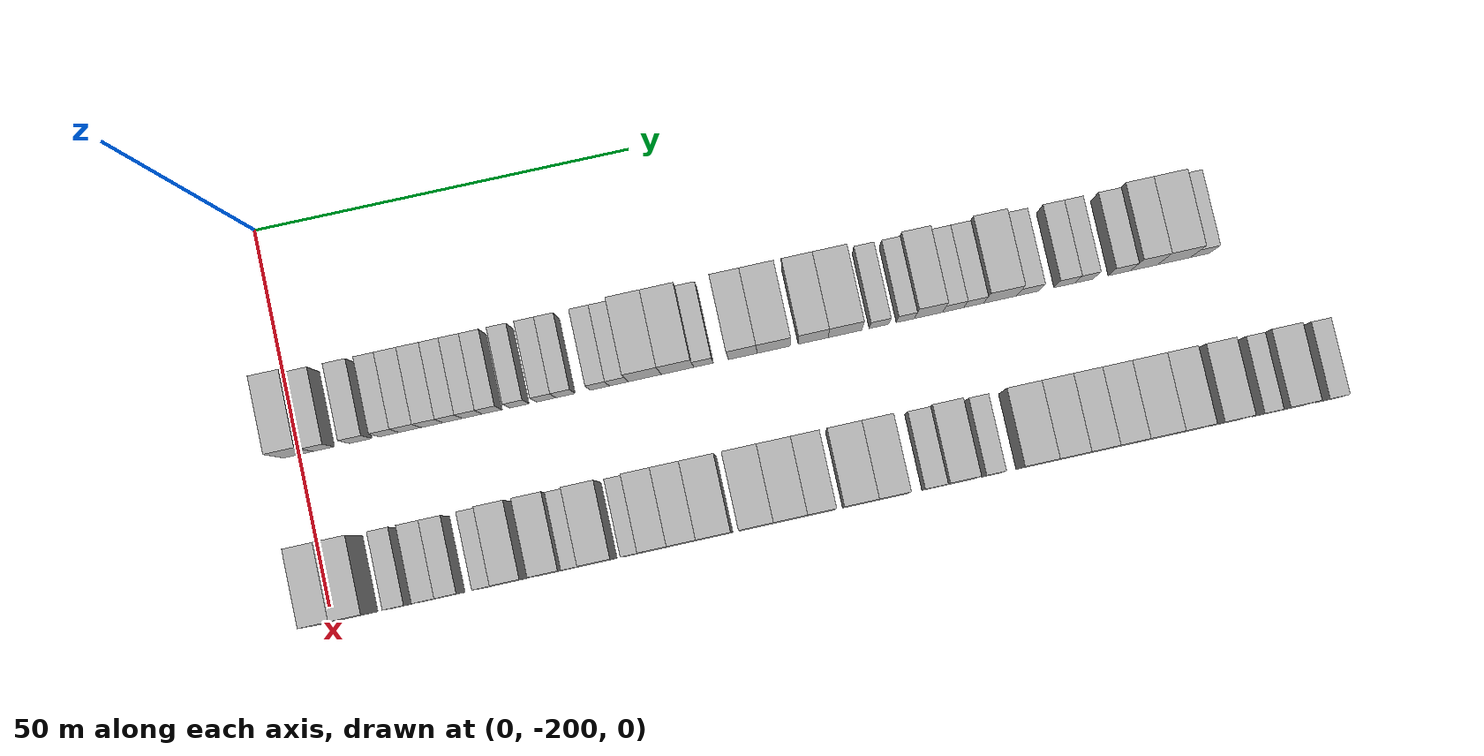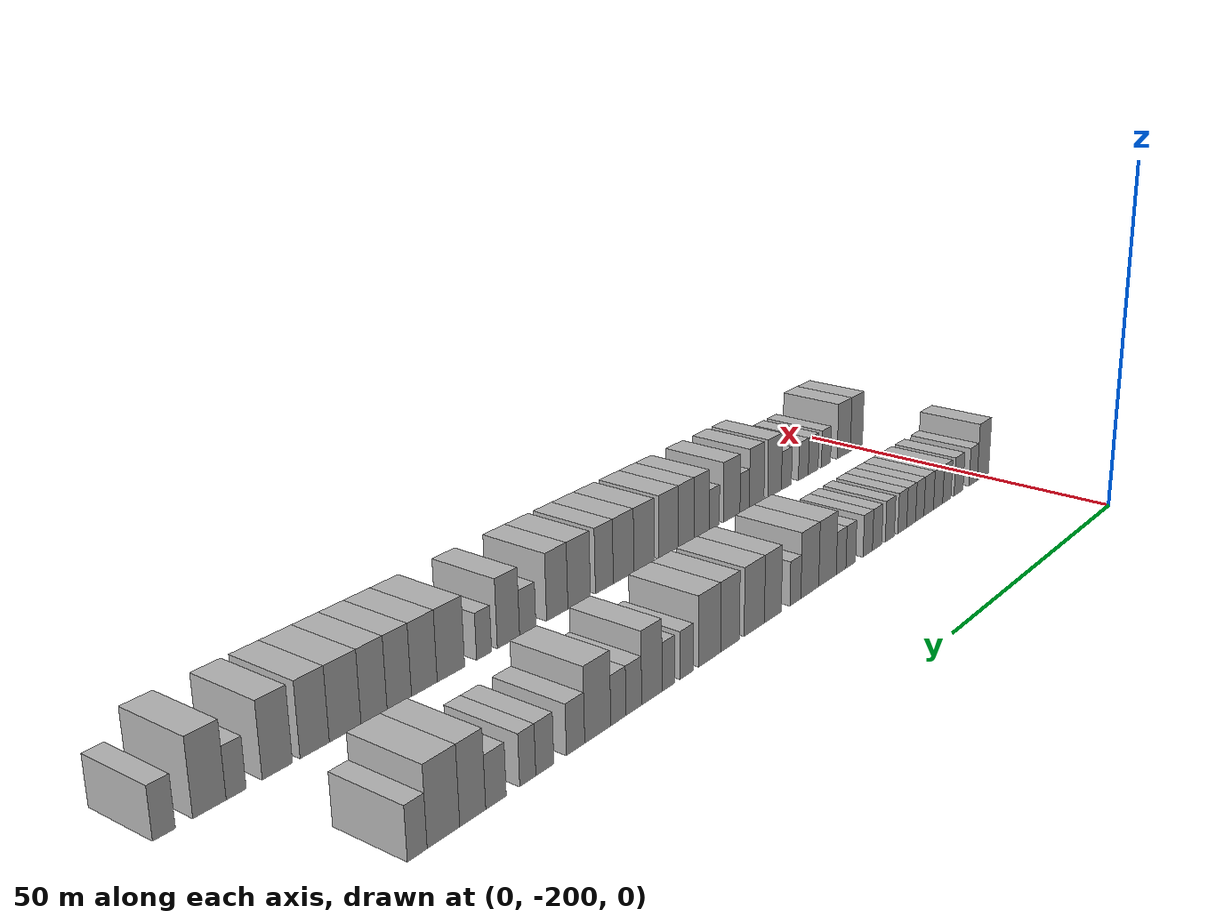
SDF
<sdf version="1.6">
 <world name="default">
  <model name="building_1">
   <static>1</static>
   <pose>25.0000 -200.0431 0 0.000000 0.000000 0.000000</pose>
   <link name="link">
    <pose>0 0 4.50 0 0 0</pose>
    <collision name="collision"><geometry><box><size>10.0000 3.9137 9.0000</size></box></geometry></collision>
    <visual name="visual">
     <cast_shadows>0</cast_shadows>
     <geometry><box><size>10.0000 3.9137 9.0000</size></box></geometry>
     <material>
      <script>
       <uri>model://HANNAS_wall/materials/scripts</uri>
       <uri>model://HANNAS_wall/materials/textures</uri>
       <name>vrc/HANNAS_wall</name>
      </script>
     </material>
    </visual>
   </link>
  </model>
  <model name="building_2">
   <static>1</static>
   <pose>25.0000 -196.7073 0 0.000000 0.000000 0.000000</pose>
   <link name="link">
    <pose>0 0 3.00 0 0 0</pose>
    <collision name="collision"><geometry><box><size>10.0000 2.7580 6.0000</size></box></geometry></collision>
    <visual name="visual">
     <cast_shadows>0</cast_shadows>
     <geometry><box><size>10.0000 2.7580 6.0000</size></box></geometry>
     <material>
      <script>
       <uri>model://HANNAS_wall/materials/scripts</uri>
       <uri>model://HANNAS_wall/materials/textures</uri>
       <name>vrc/HANNAS_wall</name>
      </script>
     </material>
    </visual>
   </link>
  </model>
  <model name="building_3">
   <static>1</static>
   <pose>25.0000 -191.8505 0 0.000000 0.000000 0.000000</pose>
   <link name="link">
    <pose>0 0 3.00 0 0 0</pose>
    <collision name="collision"><geometry><box><size>10.0000 2.9555 6.0000</size></box></geometry></collision>
    <visual name="visual">
     <cast_shadows>0</cast_shadows>
     <geometry><box><size>10.0000 2.9555 6.0000</size></box></geometry>
     <material>
      <script>
       <uri>model://HANNAS_wall/materials/scripts</uri>
       <uri>model://HANNAS_wall/materials/textures</uri>
       <name>vrc/HANNAS_wall</name>
      </script>
     </material>
    </visual>
   </link>
  </model>
  <model name="building_4">
   <static>1</static>
   <pose>25.0000 -188.0546 0 0.000000 0.000000 0.000000</pose>
   <link name="link">
    <pose>0 0 3.00 0 0 0</pose>
    <collision name="collision"><geometry><box><size>10.0000 2.6365 6.0000</size></box></geometry></collision>
    <visual name="visual">
     <cast_shadows>0</cast_shadows>
     <geometry><box><size>10.0000 2.6365 6.0000</size></box></geometry>
     <material>
      <script>
       <uri>model://HANNAS_wall/materials/scripts</uri>
       <uri>model://HANNAS_wall/materials/textures</uri>
       <name>vrc/HANNAS_wall</name>
      </script>
     </material>
    </visual>
   </link>
  </model>
  <model name="building_5">
   <static>1</static>
   <pose>25.0000 -185.2900 0 0.000000 0.000000 0.000000</pose>
   <link name="link">
    <pose>0 0 3.00 0 0 0</pose>
    <collision name="collision"><geometry><box><size>10.0000 2.8927 6.0000</size></box></geometry></collision>
    <visual name="visual">
     <cast_shadows>0</cast_shadows>
     <geometry><box><size>10.0000 2.8927 6.0000</size></box></geometry>
     <material>
      <script>
       <uri>model://HANNAS_wall/materials/scripts</uri>
       <uri>model://HANNAS_wall/materials/textures</uri>
       <name>vrc/HANNAS_wall</name>
      </script>
     </material>
    </visual>
   </link>
  </model>
  <model name="building_6">
   <static>1</static>
   <pose>25.0000 -182.3802 0 0.000000 0.000000 0.000000</pose>
   <link name="link">
    <pose>0 0 3.00 0 0 0</pose>
    <collision name="collision"><geometry><box><size>10.0000 2.9268 6.0000</size></box></geometry></collision>
    <visual name="visual">
     <cast_shadows>0</cast_shadows>
     <geometry><box><size>10.0000 2.9268 6.0000</size></box></geometry>
     <material>
      <script>
       <uri>model://HANNAS_wall/materials/scripts</uri>
       <uri>model://HANNAS_wall/materials/textures</uri>
       <name>vrc/HANNAS_wall</name>
      </script>
     </material>
    </visual>
   </link>
  </model>
  <model name="building_7">
   <static>1</static>
   <pose>25.0000 -179.6508 0 0.000000 0.000000 0.000000</pose>
   <link name="link">
    <pose>0 0 3.00 0 0 0</pose>
    <collision name="collision"><geometry><box><size>10.0000 2.5320 6.0000</size></box></geometry></collision>
    <visual name="visual">
     <cast_shadows>0</cast_shadows>
     <geometry><box><size>10.0000 2.5320 6.0000</size></box></geometry>
     <material>
      <script>
       <uri>model://HANNAS_wall/materials/scripts</uri>
       <uri>model://HANNAS_wall/materials/textures</uri>
       <name>vrc/HANNAS_wall</name>
      </script>
     </material>
    </visual>
   </link>
  </model>
  <model name="building_8">
   <static>1</static>
   <pose>25.0000 -177.0673 0 0.000000 0.000000 0.000000</pose>
   <link name="link">
    <pose>0 0 3.00 0 0 0</pose>
    <collision name="collision"><geometry><box><size>10.0000 2.6349 6.0000</size></box></geometry></collision>
    <visual name="visual">
     <cast_shadows>0</cast_shadows>
     <geometry><box><size>10.0000 2.6349 6.0000</size></box></geometry>
     <material>
      <script>
       <uri>model://HANNAS_wall/materials/scripts</uri>
       <uri>model://HANNAS_wall/materials/textures</uri>
       <name>vrc/HANNAS_wall</name>
      </script>
     </material>
    </visual>
   </link>
  </model>
  <model name="building_9">
   <static>1</static>
   <pose>25.0000 -174.4618 0 0.000000 0.000000 0.000000</pose>
   <link name="link">
    <pose>0 0 3.00 0 0 0</pose>
    <collision name="collision"><geometry><box><size>10.0000 2.5761 6.0000</size></box></geometry></collision>
    <visual name="visual">
     <cast_shadows>0</cast_shadows>
     <geometry><box><size>10.0000 2.5761 6.0000</size></box></geometry>
     <material>
      <script>
       <uri>model://HANNAS_wall/materials/scripts</uri>
       <uri>model://HANNAS_wall/materials/textures</uri>
       <name>vrc/HANNAS_wall</name>
      </script>
     </material>
    </visual>
   </link>
  </model>
  <model name="building_10">
   <static>1</static>
   <pose>25.0000 -170.8962 0 0.000000 0.000000 0.000000</pose>
   <link name="link">
    <pose>0 0 3.00 0 0 0</pose>
    <collision name="collision"><geometry><box><size>10.0000 2.5550 6.0000</size></box></geometry></collision>
    <visual name="visual">
     <cast_shadows>0</cast_shadows>
     <geometry><box><size>10.0000 2.5550 6.0000</size></box></geometry>
     <material>
      <script>
       <uri>model://HANNAS_wall/materials/scripts</uri>
       <uri>model://HANNAS_wall/materials/textures</uri>
       <name>vrc/HANNAS_wall</name>
      </script>
     </material>
    </visual>
   </link>
  </model>
  <model name="building_11">
   <static>1</static>
   <pose>25.0000 -167.3284 0 0.000000 0.000000 0.000000</pose>
   <link name="link">
    <pose>0 0 3.00 0 0 0</pose>
    <collision name="collision"><geometry><box><size>10.0000 2.5806 6.0000</size></box></geometry></collision>
    <visual name="visual">
     <cast_shadows>0</cast_shadows>
     <geometry><box><size>10.0000 2.5806 6.0000</size></box></geometry>
     <material>
      <script>
       <uri>model://HANNAS_wall/materials/scripts</uri>
       <uri>model://HANNAS_wall/materials/textures</uri>
       <name>vrc/HANNAS_wall</name>
      </script>
     </material>
    </visual>
   </link>
  </model>
  <model name="building_12">
   <static>1</static>
   <pose>25.0000 -164.7689 0 0.000000 0.000000 0.000000</pose>
   <link name="link">
    <pose>0 0 3.00 0 0 0</pose>
    <collision name="collision"><geometry><box><size>10.0000 2.5385 6.0000</size></box></geometry></collision>
    <visual name="visual">
     <cast_shadows>0</cast_shadows>
     <geometry><box><size>10.0000 2.5385 6.0000</size></box></geometry>
     <material>
      <script>
       <uri>model://HANNAS_wall/materials/scripts</uri>
       <uri>model://HANNAS_wall/materials/textures</uri>
       <name>vrc/HANNAS_wall</name>
      </script>
     </material>
    </visual>
   </link>
  </model>
  <model name="building_13">
   <static>1</static>
   <pose>25.0000 -160.2340 0 0.000000 0.000000 0.000000</pose>
   <link name="link">
    <pose>0 0 3.00 0 0 0</pose>
    <collision name="collision"><geometry><box><size>10.0000 2.5311 6.0000</size></box></geometry></collision>
    <visual name="visual">
     <cast_shadows>0</cast_shadows>
     <geometry><box><size>10.0000 2.5311 6.0000</size></box></geometry>
     <material>
      <script>
       <uri>model://HANNAS_wall/materials/scripts</uri>
       <uri>model://HANNAS_wall/materials/textures</uri>
       <name>vrc/HANNAS_wall</name>
      </script>
     </material>
    </visual>
   </link>
  </model>
  <model name="building_14">
   <static>1</static>
   <pose>25.0000 -157.7201 0 0.000000 0.000000 0.000000</pose>
   <link name="link">
    <pose>0 0 3.00 0 0 0</pose>
    <collision name="collision"><geometry><box><size>10.0000 2.4967 6.0000</size></box></geometry></collision>
    <visual name="visual">
     <cast_shadows>0</cast_shadows>
     <geometry><box><size>10.0000 2.4967 6.0000</size></box></geometry>
     <material>
      <script>
       <uri>model://HANNAS_wall/materials/scripts</uri>
       <uri>model://HANNAS_wall/materials/textures</uri>
       <name>vrc/HANNAS_wall</name>
      </script>
     </material>
    </visual>
   </link>
  </model>
  <model name="building_15">
   <static>1</static>
   <pose>25.0000 -154.2740 0 0.000000 0.000000 0.000000</pose>
   <link name="link">
    <pose>0 0 4.50 0 0 0</pose>
    <collision name="collision"><geometry><box><size>10.0000 4.3956 9.0000</size></box></geometry></collision>
    <visual name="visual">
     <cast_shadows>0</cast_shadows>
     <geometry><box><size>10.0000 4.3956 9.0000</size></box></geometry>
     <material>
      <script>
       <uri>model://HANNAS_wall/materials/scripts</uri>
       <uri>model://HANNAS_wall/materials/textures</uri>
       <name>vrc/HANNAS_wall</name>
      </script>
     </material>
    </visual>
   </link>
  </model>
  <model name="building_16">
   <static>1</static>
   <pose>25.0000 -149.9144 0 0.000000 0.000000 0.000000</pose>
   <link name="link">
    <pose>0 0 4.50 0 0 0</pose>
    <collision name="collision"><geometry><box><size>10.0000 4.3236 9.0000</size></box></geometry></collision>
    <visual name="visual">
     <cast_shadows>0</cast_shadows>
     <geometry><box><size>10.0000 4.3236 9.0000</size></box></geometry>
     <material>
      <script>
       <uri>model://HANNAS_wall/materials/scripts</uri>
       <uri>model://HANNAS_wall/materials/textures</uri>
       <name>vrc/HANNAS_wall</name>
      </script>
     </material>
    </visual>
   </link>
  </model>
  <model name="building_17">
   <static>1</static>
   <pose>25.0000 -146.4588 0 0.000000 0.000000 0.000000</pose>
   <link name="link">
    <pose>0 0 3.00 0 0 0</pose>
    <collision name="collision"><geometry><box><size>10.0000 2.5877 6.0000</size></box></geometry></collision>
    <visual name="visual">
     <cast_shadows>0</cast_shadows>
     <geometry><box><size>10.0000 2.5877 6.0000</size></box></geometry>
     <material>
      <script>
       <uri>model://HANNAS_wall/materials/scripts</uri>
       <uri>model://HANNAS_wall/materials/textures</uri>
       <name>vrc/HANNAS_wall</name>
      </script>
     </material>
    </visual>
   </link>
  </model>
  <model name="building_18">
   <static>1</static>
   <pose>25.0000 -141.2487 0 0.000000 0.000000 0.000000</pose>
   <link name="link">
    <pose>0 0 4.50 0 0 0</pose>
    <collision name="collision"><geometry><box><size>10.0000 3.8325 9.0000</size></box></geometry></collision>
    <visual name="visual">
     <cast_shadows>0</cast_shadows>
     <geometry><box><size>10.0000 3.8325 9.0000</size></box></geometry>
     <material>
      <script>
       <uri>model://HANNAS_wall/materials/scripts</uri>
       <uri>model://HANNAS_wall/materials/textures</uri>
       <name>vrc/HANNAS_wall</name>
      </script>
     </material>
    </visual>
   </link>
  </model>
  <model name="building_19">
   <static>1</static>
   <pose>25.0000 -137.1106 0 0.000000 0.000000 0.000000</pose>
   <link name="link">
    <pose>0 0 4.50 0 0 0</pose>
    <collision name="collision"><geometry><box><size>10.0000 4.4438 9.0000</size></box></geometry></collision>
    <visual name="visual">
     <cast_shadows>0</cast_shadows>
     <geometry><box><size>10.0000 4.4438 9.0000</size></box></geometry>
     <material>
      <script>
       <uri>model://HANNAS_wall/materials/scripts</uri>
       <uri>model://HANNAS_wall/materials/textures</uri>
       <name>vrc/HANNAS_wall</name>
      </script>
     </material>
    </visual>
   </link>
  </model>
  <model name="building_20">
   <static>1</static>
   <pose>25.0000 -131.8946 0 0.000000 0.000000 0.000000</pose>
   <link name="link">
    <pose>0 0 4.50 0 0 0</pose>
    <collision name="collision"><geometry><box><size>10.0000 3.9882 9.0000</size></box></geometry></collision>
    <visual name="visual">
     <cast_shadows>0</cast_shadows>
     <geometry><box><size>10.0000 3.9882 9.0000</size></box></geometry>
     <material>
      <script>
       <uri>model://HANNAS_wall/materials/scripts</uri>
       <uri>model://HANNAS_wall/materials/textures</uri>
       <name>vrc/HANNAS_wall</name>
      </script>
     </material>
    </visual>
   </link>
  </model>
  <model name="building_21">
   <static>1</static>
   <pose>25.0000 -127.6713 0 0.000000 0.000000 0.000000</pose>
   <link name="link">
    <pose>0 0 4.50 0 0 0</pose>
    <collision name="collision"><geometry><box><size>10.0000 4.4585 9.0000</size></box></geometry></collision>
    <visual name="visual">
     <cast_shadows>0</cast_shadows>
     <geometry><box><size>10.0000 4.4585 9.0000</size></box></geometry>
     <material>
      <script>
       <uri>model://HANNAS_wall/materials/scripts</uri>
       <uri>model://HANNAS_wall/materials/textures</uri>
       <name>vrc/HANNAS_wall</name>
      </script>
     </material>
    </visual>
   </link>
  </model>
  <model name="building_22">
   <static>1</static>
   <pose>25.0000 -123.1345 0 0.000000 0.000000 0.000000</pose>
   <link name="link">
    <pose>0 0 3.00 0 0 0</pose>
    <collision name="collision"><geometry><box><size>10.0000 2.6150 6.0000</size></box></geometry></collision>
    <visual name="visual">
     <cast_shadows>0</cast_shadows>
     <geometry><box><size>10.0000 2.6150 6.0000</size></box></geometry>
     <material>
      <script>
       <uri>model://HANNAS_wall/materials/scripts</uri>
       <uri>model://HANNAS_wall/materials/textures</uri>
       <name>vrc/HANNAS_wall</name>
      </script>
     </material>
    </visual>
   </link>
  </model>
  <model name="building_23">
   <static>1</static>
   <pose>25.0000 -119.6156 0 0.000000 0.000000 0.000000</pose>
   <link name="link">
    <pose>0 0 3.00 0 0 0</pose>
    <collision name="collision"><geometry><box><size>10.0000 2.4228 6.0000</size></box></geometry></collision>
    <visual name="visual">
     <cast_shadows>0</cast_shadows>
     <geometry><box><size>10.0000 2.4228 6.0000</size></box></geometry>
     <material>
      <script>
       <uri>model://HANNAS_wall/materials/scripts</uri>
       <uri>model://HANNAS_wall/materials/textures</uri>
       <name>vrc/HANNAS_wall</name>
      </script>
     </material>
    </visual>
   </link>
  </model>
  <model name="building_24">
   <static>1</static>
   <pose>25.0000 -116.5192 0 0.000000 0.000000 0.000000</pose>
   <link name="link">
    <pose>0 0 4.50 0 0 0</pose>
    <collision name="collision"><geometry><box><size>10.0000 3.7701 9.0000</size></box></geometry></collision>
    <visual name="visual">
     <cast_shadows>0</cast_shadows>
     <geometry><box><size>10.0000 3.7701 9.0000</size></box></geometry>
     <material>
      <script>
       <uri>model://HANNAS_wall/materials/scripts</uri>
       <uri>model://HANNAS_wall/materials/textures</uri>
       <name>vrc/HANNAS_wall</name>
      </script>
     </material>
    </visual>
   </link>
  </model>
  <model name="building_25">
   <static>1</static>
   <pose>25.0000 -113.2266 0 0.000000 0.000000 0.000000</pose>
   <link name="link">
    <pose>0 0 3.00 0 0 0</pose>
    <collision name="collision"><geometry><box><size>10.0000 2.8150 6.0000</size></box></geometry></collision>
    <visual name="visual">
     <cast_shadows>0</cast_shadows>
     <geometry><box><size>10.0000 2.8150 6.0000</size></box></geometry>
     <material>
      <script>
       <uri>model://HANNAS_wall/materials/scripts</uri>
       <uri>model://HANNAS_wall/materials/textures</uri>
       <name>vrc/HANNAS_wall</name>
      </script>
     </material>
    </visual>
   </link>
  </model>
  <model name="building_26">
   <static>1</static>
   <pose>25.0000 -110.4952 0 0.000000 0.000000 0.000000</pose>
   <link name="link">
    <pose>0 0 3.00 0 0 0</pose>
    <collision name="collision"><geometry><box><size>10.0000 2.6478 6.0000</size></box></geometry></collision>
    <visual name="visual">
     <cast_shadows>0</cast_shadows>
     <geometry><box><size>10.0000 2.6478 6.0000</size></box></geometry>
     <material>
      <script>
       <uri>model://HANNAS_wall/materials/scripts</uri>
       <uri>model://HANNAS_wall/materials/textures</uri>
       <name>vrc/HANNAS_wall</name>
      </script>
     </material>
    </visual>
   </link>
  </model>
  <model name="building_27">
   <static>1</static>
   <pose>25.0000 -106.9631 0 0.000000 0.000000 0.000000</pose>
   <link name="link">
    <pose>0 0 4.50 0 0 0</pose>
    <collision name="collision"><geometry><box><size>10.0000 4.4164 9.0000</size></box></geometry></collision>
    <visual name="visual">
     <cast_shadows>0</cast_shadows>
     <geometry><box><size>10.0000 4.4164 9.0000</size></box></geometry>
     <material>
      <script>
       <uri>model://HANNAS_wall/materials/scripts</uri>
       <uri>model://HANNAS_wall/materials/textures</uri>
       <name>vrc/HANNAS_wall</name>
      </script>
     </material>
    </visual>
   </link>
  </model>
  <model name="building_28">
   <static>1</static>
   <pose>25.0000 -103.2580 0 0.000000 0.000000 0.000000</pose>
   <link name="link">
    <pose>0 0 3.00 0 0 0</pose>
    <collision name="collision"><geometry><box><size>10.0000 2.9938 6.0000</size></box></geometry></collision>
    <visual name="visual">
     <cast_shadows>0</cast_shadows>
     <geometry><box><size>10.0000 2.9938 6.0000</size></box></geometry>
     <material>
      <script>
       <uri>model://HANNAS_wall/materials/scripts</uri>
       <uri>model://HANNAS_wall/materials/textures</uri>
       <name>vrc/HANNAS_wall</name>
      </script>
     </material>
    </visual>
   </link>
  </model>
  <model name="building_29">
   <static>1</static>
   <pose>25.0000 -98.3528 0 0.000000 0.000000 0.000000</pose>
   <link name="link">
    <pose>0 0 3.00 0 0 0</pose>
    <collision name="collision"><geometry><box><size>10.0000 2.8166 6.0000</size></box></geometry></collision>
    <visual name="visual">
     <cast_shadows>0</cast_shadows>
     <geometry><box><size>10.0000 2.8166 6.0000</size></box></geometry>
     <material>
      <script>
       <uri>model://HANNAS_wall/materials/scripts</uri>
       <uri>model://HANNAS_wall/materials/textures</uri>
       <name>vrc/HANNAS_wall</name>
      </script>
     </material>
    </visual>
   </link>
  </model>
  <model name="building_30">
   <static>1</static>
   <pose>25.0000 -95.7208 0 0.000000 0.000000 0.000000</pose>
   <link name="link">
    <pose>0 0 3.00 0 0 0</pose>
    <collision name="collision"><geometry><box><size>10.0000 2.4473 6.0000</size></box></geometry></collision>
    <visual name="visual">
     <cast_shadows>0</cast_shadows>
     <geometry><box><size>10.0000 2.4473 6.0000</size></box></geometry>
     <material>
      <script>
       <uri>model://HANNAS_wall/materials/scripts</uri>
       <uri>model://HANNAS_wall/materials/textures</uri>
       <name>vrc/HANNAS_wall</name>
      </script>
     </material>
    </visual>
   </link>
  </model>
  <model name="building_31">
   <static>1</static>
   <pose>25.0000 -91.0076 0 0.000000 0.000000 0.000000</pose>
   <link name="link">
    <pose>0 0 3.00 0 0 0</pose>
    <collision name="collision"><geometry><box><size>10.0000 2.9791 6.0000</size></box></geometry></collision>
    <visual name="visual">
     <cast_shadows>0</cast_shadows>
     <geometry><box><size>10.0000 2.9791 6.0000</size></box></geometry>
     <material>
      <script>
       <uri>model://HANNAS_wall/materials/scripts</uri>
       <uri>model://HANNAS_wall/materials/textures</uri>
       <name>vrc/HANNAS_wall</name>
      </script>
     </material>
    </visual>
   </link>
  </model>
  <model name="building_32">
   <static>1</static>
   <pose>25.0000 -87.6984 0 0.000000 0.000000 0.000000</pose>
   <link name="link">
    <pose>0 0 4.50 0 0 0</pose>
    <collision name="collision"><geometry><box><size>10.0000 3.6393 9.0000</size></box></geometry></collision>
    <visual name="visual">
     <cast_shadows>0</cast_shadows>
     <geometry><box><size>10.0000 3.6393 9.0000</size></box></geometry>
     <material>
      <script>
       <uri>model://HANNAS_wall/materials/scripts</uri>
       <uri>model://HANNAS_wall/materials/textures</uri>
       <name>vrc/HANNAS_wall</name>
      </script>
     </material>
    </visual>
   </link>
  </model>
  <model name="building_33">
   <static>1</static>
   <pose>25.0000 -83.6790 0 0.000000 0.000000 0.000000</pose>
   <link name="link">
    <pose>0 0 4.50 0 0 0</pose>
    <collision name="collision"><geometry><box><size>10.0000 4.3994 9.0000</size></box></geometry></collision>
    <visual name="visual">
     <cast_shadows>0</cast_shadows>
     <geometry><box><size>10.0000 4.3994 9.0000</size></box></geometry>
     <material>
      <script>
       <uri>model://HANNAS_wall/materials/scripts</uri>
       <uri>model://HANNAS_wall/materials/textures</uri>
       <name>vrc/HANNAS_wall</name>
      </script>
     </material>
    </visual>
   </link>
  </model>
  <model name="building_34">
   <static>1</static>
   <pose>25.0000 -80.1914 0 0.000000 0.000000 0.000000</pose>
   <link name="link">
    <pose>0 0 3.00 0 0 0</pose>
    <collision name="collision"><geometry><box><size>10.0000 2.5758 6.0000</size></box></geometry></collision>
    <visual name="visual">
     <cast_shadows>0</cast_shadows>
     <geometry><box><size>10.0000 2.5758 6.0000</size></box></geometry>
     <material>
      <script>
       <uri>model://HANNAS_wall/materials/scripts</uri>
       <uri>model://HANNAS_wall/materials/textures</uri>
       <name>vrc/HANNAS_wall</name>
      </script>
     </material>
    </visual>
   </link>
  </model>
  <model name="building_97">
   <static>1</static>
   <pose>47.0000 -200.0806 0 0.000000 0.000000 0.000000</pose>
   <link name="link">
    <pose>0 0 4.50 0 0 0</pose>
    <collision name="collision"><geometry><box><size>10.0000 3.8388 9.0000</size></box></geometry></collision>
    <visual name="visual">
     <cast_shadows>0</cast_shadows>
     <geometry><box><size>10.0000 3.8388 9.0000</size></box></geometry>
     <material>
      <script>
       <uri>model://HANNAS_wall/materials/scripts</uri>
       <uri>model://HANNAS_wall/materials/textures</uri>
       <name>vrc/HANNAS_wall</name>
      </script>
     </material>
    </visual>
   </link>
  </model>
  <model name="building_98">
   <static>1</static>
   <pose>47.0000 -196.1073 0 0.000000 0.000000 0.000000</pose>
   <link name="link">
    <pose>0 0 4.50 0 0 0</pose>
    <collision name="collision"><geometry><box><size>10.0000 4.1078 9.0000</size></box></geometry></collision>
    <visual name="visual">
     <cast_shadows>0</cast_shadows>
     <geometry><box><size>10.0000 4.1078 9.0000</size></box></geometry>
     <material>
      <script>
       <uri>model://HANNAS_wall/materials/scripts</uri>
       <uri>model://HANNAS_wall/materials/textures</uri>
       <name>vrc/HANNAS_wall</name>
      </script>
     </material>
    </visual>
   </link>
  </model>
  <model name="building_99">
   <static>1</static>
   <pose>47.0000 -190.6954 0 0.000000 0.000000 0.000000</pose>
   <link name="link">
    <pose>0 0 3.00 0 0 0</pose>
    <collision name="collision"><geometry><box><size>10.0000 2.7160 6.0000</size></box></geometry></collision>
    <visual name="visual">
     <cast_shadows>0</cast_shadows>
     <geometry><box><size>10.0000 2.7160 6.0000</size></box></geometry>
     <material>
      <script>
       <uri>model://HANNAS_wall/materials/scripts</uri>
       <uri>model://HANNAS_wall/materials/textures</uri>
       <name>vrc/HANNAS_wall</name>
      </script>
     </material>
    </visual>
   </link>
  </model>
  <model name="building_100">
   <static>1</static>
   <pose>47.0000 -186.9008 0 0.000000 0.000000 0.000000</pose>
   <link name="link">
    <pose>0 0 3.00 0 0 0</pose>
    <collision name="collision"><geometry><box><size>10.0000 2.8733 6.0000</size></box></geometry></collision>
    <visual name="visual">
     <cast_shadows>0</cast_shadows>
     <geometry><box><size>10.0000 2.8733 6.0000</size></box></geometry>
     <material>
      <script>
       <uri>model://HANNAS_wall/materials/scripts</uri>
       <uri>model://HANNAS_wall/materials/textures</uri>
       <name>vrc/HANNAS_wall</name>
      </script>
     </material>
    </visual>
   </link>
  </model>
  <model name="building_101">
   <static>1</static>
   <pose>47.0000 -184.0516 0 0.000000 0.000000 0.000000</pose>
   <link name="link">
    <pose>0 0 3.00 0 0 0</pose>
    <collision name="collision"><geometry><box><size>10.0000 2.8251 6.0000</size></box></geometry></collision>
    <visual name="visual">
     <cast_shadows>0</cast_shadows>
     <geometry><box><size>10.0000 2.8251 6.0000</size></box></geometry>
     <material>
      <script>
       <uri>model://HANNAS_wall/materials/scripts</uri>
       <uri>model://HANNAS_wall/materials/textures</uri>
       <name>vrc/HANNAS_wall</name>
      </script>
     </material>
    </visual>
   </link>
  </model>
  <model name="building_102">
   <static>1</static>
   <pose>47.0000 -179.2477 0 0.000000 0.000000 0.000000</pose>
   <link name="link">
    <pose>0 0 3.00 0 0 0</pose>
    <collision name="collision"><geometry><box><size>10.0000 2.7829 6.0000</size></box></geometry></collision>
    <visual name="visual">
     <cast_shadows>0</cast_shadows>
     <geometry><box><size>10.0000 2.7829 6.0000</size></box></geometry>
     <material>
      <script>
       <uri>model://HANNAS_wall/materials/scripts</uri>
       <uri>model://HANNAS_wall/materials/textures</uri>
       <name>vrc/HANNAS_wall</name>
      </script>
     </material>
    </visual>
   </link>
  </model>
  <model name="building_103">
   <static>1</static>
   <pose>47.0000 -175.9766 0 0.000000 0.000000 0.000000</pose>
   <link name="link">
    <pose>0 0 4.50 0 0 0</pose>
    <collision name="collision"><geometry><box><size>10.0000 3.7591 9.0000</size></box></geometry></collision>
    <visual name="visual">
     <cast_shadows>0</cast_shadows>
     <geometry><box><size>10.0000 3.7591 9.0000</size></box></geometry>
     <material>
      <script>
       <uri>model://HANNAS_wall/materials/scripts</uri>
       <uri>model://HANNAS_wall/materials/textures</uri>
       <name>vrc/HANNAS_wall</name>
      </script>
     </material>
    </visual>
   </link>
  </model>
  <model name="building_104">
   <static>1</static>
   <pose>47.0000 -171.1786 0 0.000000 0.000000 0.000000</pose>
   <link name="link">
    <pose>0 0 4.50 0 0 0</pose>
    <collision name="collision"><geometry><box><size>10.0000 3.8370 9.0000</size></box></geometry></collision>
    <visual name="visual">
     <cast_shadows>0</cast_shadows>
     <geometry><box><size>10.0000 3.8370 9.0000</size></box></geometry>
     <material>
      <script>
       <uri>model://HANNAS_wall/materials/scripts</uri>
       <uri>model://HANNAS_wall/materials/textures</uri>
       <name>vrc/HANNAS_wall</name>
      </script>
     </material>
    </visual>
   </link>
  </model>
  <model name="building_105">
   <static>1</static>
   <pose>47.0000 -168.0388 0 0.000000 0.000000 0.000000</pose>
   <link name="link">
    <pose>0 0 3.00 0 0 0</pose>
    <collision name="collision"><geometry><box><size>10.0000 2.4425 6.0000</size></box></geometry></collision>
    <visual name="visual">
     <cast_shadows>0</cast_shadows>
     <geometry><box><size>10.0000 2.4425 6.0000</size></box></geometry>
     <material>
      <script>
       <uri>model://HANNAS_wall/materials/scripts</uri>
       <uri>model://HANNAS_wall/materials/textures</uri>
       <name>vrc/HANNAS_wall</name>
      </script>
     </material>
    </visual>
   </link>
  </model>
  <model name="building_106">
   <static>1</static>
   <pose>47.0000 -164.7337 0 0.000000 0.000000 0.000000</pose>
   <link name="link">
    <pose>0 0 4.50 0 0 0</pose>
    <collision name="collision"><geometry><box><size>10.0000 4.1676 9.0000</size></box></geometry></collision>
    <visual name="visual">
     <cast_shadows>0</cast_shadows>
     <geometry><box><size>10.0000 4.1676 9.0000</size></box></geometry>
     <material>
      <script>
       <uri>model://HANNAS_wall/materials/scripts</uri>
       <uri>model://HANNAS_wall/materials/textures</uri>
       <name>vrc/HANNAS_wall</name>
      </script>
     </material>
    </visual>
   </link>
  </model>
  <model name="building_107">
   <static>1</static>
   <pose>47.0000 -160.4396 0 0.000000 0.000000 0.000000</pose>
   <link name="link">
    <pose>0 0 3.00 0 0 0</pose>
    <collision name="collision"><geometry><box><size>10.0000 2.4206 6.0000</size></box></geometry></collision>
    <visual name="visual">
     <cast_shadows>0</cast_shadows>
     <geometry><box><size>10.0000 2.4206 6.0000</size></box></geometry>
     <material>
      <script>
       <uri>model://HANNAS_wall/materials/scripts</uri>
       <uri>model://HANNAS_wall/materials/textures</uri>
       <name>vrc/HANNAS_wall</name>
      </script>
     </material>
    </visual>
   </link>
  </model>
  <model name="building_108">
   <static>1</static>
   <pose>47.0000 -157.3790 0 0.000000 0.000000 0.000000</pose>
   <link name="link">
    <pose>0 0 4.50 0 0 0</pose>
    <collision name="collision"><geometry><box><size>10.0000 3.7006 9.0000</size></box></geometry></collision>
    <visual name="visual">
     <cast_shadows>0</cast_shadows>
     <geometry><box><size>10.0000 3.7006 9.0000</size></box></geometry>
     <material>
      <script>
       <uri>model://HANNAS_wall/materials/scripts</uri>
       <uri>model://HANNAS_wall/materials/textures</uri>
       <name>vrc/HANNAS_wall</name>
      </script>
     </material>
    </visual>
   </link>
  </model>
  <model name="building_109">
   <static>1</static>
   <pose>47.0000 -153.6802 0 0.000000 0.000000 0.000000</pose>
   <link name="link">
    <pose>0 0 4.50 0 0 0</pose>
    <collision name="collision"><geometry><box><size>10.0000 3.6971 9.0000</size></box></geometry></collision>
    <visual name="visual">
     <cast_shadows>0</cast_shadows>
     <geometry><box><size>10.0000 3.6971 9.0000</size></box></geometry>
     <material>
      <script>
       <uri>model://HANNAS_wall/materials/scripts</uri>
       <uri>model://HANNAS_wall/materials/textures</uri>
       <name>vrc/HANNAS_wall</name>
      </script>
     </material>
    </visual>
   </link>
  </model>
  <model name="building_110">
   <static>1</static>
   <pose>47.0000 -149.6123 0 0.000000 0.000000 0.000000</pose>
   <link name="link">
    <pose>0 0 4.50 0 0 0</pose>
    <collision name="collision"><geometry><box><size>10.0000 4.4387 9.0000</size></box></geometry></collision>
    <visual name="visual">
     <cast_shadows>0</cast_shadows>
     <geometry><box><size>10.0000 4.4387 9.0000</size></box></geometry>
     <material>
      <script>
       <uri>model://HANNAS_wall/materials/scripts</uri>
       <uri>model://HANNAS_wall/materials/textures</uri>
       <name>vrc/HANNAS_wall</name>
      </script>
     </material>
    </visual>
   </link>
  </model>
  <model name="building_111">
   <static>1</static>
   <pose>47.0000 -144.1765 0 0.000000 0.000000 0.000000</pose>
   <link name="link">
    <pose>0 0 4.50 0 0 0</pose>
    <collision name="collision"><geometry><box><size>10.0000 4.4330 9.0000</size></box></geometry></collision>
    <visual name="visual">
     <cast_shadows>0</cast_shadows>
     <geometry><box><size>10.0000 4.4330 9.0000</size></box></geometry>
     <material>
      <script>
       <uri>model://HANNAS_wall/materials/scripts</uri>
       <uri>model://HANNAS_wall/materials/textures</uri>
       <name>vrc/HANNAS_wall</name>
      </script>
     </material>
    </visual>
   </link>
  </model>
  <model name="building_112">
   <static>1</static>
   <pose>47.0000 -139.7793 0 0.000000 0.000000 0.000000</pose>
   <link name="link">
    <pose>0 0 4.50 0 0 0</pose>
    <collision name="collision"><geometry><box><size>10.0000 4.3614 9.0000</size></box></geometry></collision>
    <visual name="visual">
     <cast_shadows>0</cast_shadows>
     <geometry><box><size>10.0000 4.3614 9.0000</size></box></geometry>
     <material>
      <script>
       <uri>model://HANNAS_wall/materials/scripts</uri>
       <uri>model://HANNAS_wall/materials/textures</uri>
       <name>vrc/HANNAS_wall</name>
      </script>
     </material>
    </visual>
   </link>
  </model>
  <model name="building_113">
   <static>1</static>
   <pose>47.0000 -135.7615 0 0.000000 0.000000 0.000000</pose>
   <link name="link">
    <pose>0 0 4.50 0 0 0</pose>
    <collision name="collision"><geometry><box><size>10.0000 3.6741 9.0000</size></box></geometry></collision>
    <visual name="visual">
     <cast_shadows>0</cast_shadows>
     <geometry><box><size>10.0000 3.6741 9.0000</size></box></geometry>
     <material>
      <script>
       <uri>model://HANNAS_wall/materials/scripts</uri>
       <uri>model://HANNAS_wall/materials/textures</uri>
       <name>vrc/HANNAS_wall</name>
      </script>
     </material>
    </visual>
   </link>
  </model>
  <model name="building_114">
   <static>1</static>
   <pose>47.0000 -130.7059 0 0.000000 0.000000 0.000000</pose>
   <link name="link">
    <pose>0 0 4.50 0 0 0</pose>
    <collision name="collision"><geometry><box><size>10.0000 4.4370 9.0000</size></box></geometry></collision>
    <visual name="visual">
     <cast_shadows>0</cast_shadows>
     <geometry><box><size>10.0000 4.4370 9.0000</size></box></geometry>
     <material>
      <script>
       <uri>model://HANNAS_wall/materials/scripts</uri>
       <uri>model://HANNAS_wall/materials/textures</uri>
       <name>vrc/HANNAS_wall</name>
      </script>
     </material>
    </visual>
   </link>
  </model>
  <model name="building_115">
   <static>1</static>
   <pose>47.0000 -126.4576 0 0.000000 0.000000 0.000000</pose>
   <link name="link">
    <pose>0 0 4.50 0 0 0</pose>
    <collision name="collision"><geometry><box><size>10.0000 4.0596 9.0000</size></box></geometry></collision>
    <visual name="visual">
     <cast_shadows>0</cast_shadows>
     <geometry><box><size>10.0000 4.0596 9.0000</size></box></geometry>
     <material>
      <script>
       <uri>model://HANNAS_wall/materials/scripts</uri>
       <uri>model://HANNAS_wall/materials/textures</uri>
       <name>vrc/HANNAS_wall</name>
      </script>
     </material>
    </visual>
   </link>
  </model>
  <model name="building_116">
   <static>1</static>
   <pose>47.0000 -120.9474 0 0.000000 0.000000 0.000000</pose>
   <link name="link">
    <pose>0 0 3.00 0 0 0</pose>
    <collision name="collision"><geometry><box><size>10.0000 2.9608 6.0000</size></box></geometry></collision>
    <visual name="visual">
     <cast_shadows>0</cast_shadows>
     <geometry><box><size>10.0000 2.9608 6.0000</size></box></geometry>
     <material>
      <script>
       <uri>model://HANNAS_wall/materials/scripts</uri>
       <uri>model://HANNAS_wall/materials/textures</uri>
       <name>vrc/HANNAS_wall</name>
      </script>
     </material>
    </visual>
   </link>
  </model>
  <model name="building_117">
   <static>1</static>
   <pose>47.0000 -117.4919 0 0.000000 0.000000 0.000000</pose>
   <link name="link">
    <pose>0 0 4.50 0 0 0</pose>
    <collision name="collision"><geometry><box><size>10.0000 3.9501 9.0000</size></box></geometry></collision>
    <visual name="visual">
     <cast_shadows>0</cast_shadows>
     <geometry><box><size>10.0000 3.9501 9.0000</size></box></geometry>
     <material>
      <script>
       <uri>model://HANNAS_wall/materials/scripts</uri>
       <uri>model://HANNAS_wall/materials/textures</uri>
       <name>vrc/HANNAS_wall</name>
      </script>
     </material>
    </visual>
   </link>
  </model>
  <model name="building_118">
   <static>1</static>
   <pose>47.0000 -113.2371 0 0.000000 0.000000 0.000000</pose>
   <link name="link">
    <pose>0 0 3.00 0 0 0</pose>
    <collision name="collision"><geometry><box><size>10.0000 2.5594 6.0000</size></box></geometry></collision>
    <visual name="visual">
     <cast_shadows>0</cast_shadows>
     <geometry><box><size>10.0000 2.5594 6.0000</size></box></geometry>
     <material>
      <script>
       <uri>model://HANNAS_wall/materials/scripts</uri>
       <uri>model://HANNAS_wall/materials/textures</uri>
       <name>vrc/HANNAS_wall</name>
      </script>
     </material>
    </visual>
   </link>
  </model>
  <model name="building_119">
   <static>1</static>
   <pose>47.0000 -107.7214 0 0.000000 0.000000 0.000000</pose>
   <link name="link">
    <pose>0 0 4.50 0 0 0</pose>
    <collision name="collision"><geometry><box><size>10.0000 4.4720 9.0000</size></box></geometry></collision>
    <visual name="visual">
     <cast_shadows>0</cast_shadows>
     <geometry><box><size>10.0000 4.4720 9.0000</size></box></geometry>
     <material>
      <script>
       <uri>model://HANNAS_wall/materials/scripts</uri>
       <uri>model://HANNAS_wall/materials/textures</uri>
       <name>vrc/HANNAS_wall</name>
      </script>
     </material>
    </visual>
   </link>
  </model>
  <model name="building_120">
   <static>1</static>
   <pose>47.0000 -103.4654 0 0.000000 0.000000 0.000000</pose>
   <link name="link">
    <pose>0 0 4.50 0 0 0</pose>
    <collision name="collision"><geometry><box><size>10.0000 4.0400 9.0000</size></box></geometry></collision>
    <visual name="visual">
     <cast_shadows>0</cast_shadows>
     <geometry><box><size>10.0000 4.0400 9.0000</size></box></geometry>
     <material>
      <script>
       <uri>model://HANNAS_wall/materials/scripts</uri>
       <uri>model://HANNAS_wall/materials/textures</uri>
       <name>vrc/HANNAS_wall</name>
      </script>
     </material>
    </visual>
   </link>
  </model>
  <model name="building_121">
   <static>1</static>
   <pose>47.0000 -99.5900 0 0.000000 0.000000 0.000000</pose>
   <link name="link">
    <pose>0 0 4.50 0 0 0</pose>
    <collision name="collision"><geometry><box><size>10.0000 3.7107 9.0000</size></box></geometry></collision>
    <visual name="visual">
     <cast_shadows>0</cast_shadows>
     <geometry><box><size>10.0000 3.7107 9.0000</size></box></geometry>
     <material>
      <script>
       <uri>model://HANNAS_wall/materials/scripts</uri>
       <uri>model://HANNAS_wall/materials/textures</uri>
       <name>vrc/HANNAS_wall</name>
      </script>
     </material>
    </visual>
   </link>
  </model>
  <model name="building_122">
   <static>1</static>
   <pose>47.0000 -95.8220 0 0.000000 0.000000 0.000000</pose>
   <link name="link">
    <pose>0 0 4.50 0 0 0</pose>
    <collision name="collision"><geometry><box><size>10.0000 3.8255 9.0000</size></box></geometry></collision>
    <visual name="visual">
     <cast_shadows>0</cast_shadows>
     <geometry><box><size>10.0000 3.8255 9.0000</size></box></geometry>
     <material>
      <script>
       <uri>model://HANNAS_wall/materials/scripts</uri>
       <uri>model://HANNAS_wall/materials/textures</uri>
       <name>vrc/HANNAS_wall</name>
      </script>
     </material>
    </visual>
   </link>
  </model>
  <model name="building_123">
   <static>1</static>
   <pose>47.0000 -91.6618 0 0.000000 0.000000 0.000000</pose>
   <link name="link">
    <pose>0 0 4.50 0 0 0</pose>
    <collision name="collision"><geometry><box><size>10.0000 4.4948 9.0000</size></box></geometry></collision>
    <visual name="visual">
     <cast_shadows>0</cast_shadows>
     <geometry><box><size>10.0000 4.4948 9.0000</size></box></geometry>
     <material>
      <script>
       <uri>model://HANNAS_wall/materials/scripts</uri>
       <uri>model://HANNAS_wall/materials/textures</uri>
       <name>vrc/HANNAS_wall</name>
      </script>
     </material>
    </visual>
   </link>
  </model>
  <model name="building_124">
   <static>1</static>
   <pose>47.0000 -87.4228 0 0.000000 0.000000 0.000000</pose>
   <link name="link">
    <pose>0 0 4.50 0 0 0</pose>
    <collision name="collision"><geometry><box><size>10.0000 3.9832 9.0000</size></box></geometry></collision>
    <visual name="visual">
     <cast_shadows>0</cast_shadows>
     <geometry><box><size>10.0000 3.9832 9.0000</size></box></geometry>
     <material>
      <script>
       <uri>model://HANNAS_wall/materials/scripts</uri>
       <uri>model://HANNAS_wall/materials/textures</uri>
       <name>vrc/HANNAS_wall</name>
      </script>
     </material>
    </visual>
   </link>
  </model>
  <model name="building_125">
   <static>1</static>
   <pose>47.0000 -82.4617 0 0.000000 0.000000 0.000000</pose>
   <link name="link">
    <pose>0 0 4.50 0 0 0</pose>
    <collision name="collision"><geometry><box><size>10.0000 3.9391 9.0000</size></box></geometry></collision>
    <visual name="visual">
     <cast_shadows>0</cast_shadows>
     <geometry><box><size>10.0000 3.9391 9.0000</size></box></geometry>
     <material>
      <script>
       <uri>model://HANNAS_wall/materials/scripts</uri>
       <uri>model://HANNAS_wall/materials/textures</uri>
       <name>vrc/HANNAS_wall</name>
      </script>
     </material>
    </visual>
   </link>
  </model>
  <model name="building_126">
   <static>1</static>
   <pose>47.0000 -77.2570 0 0.000000 0.000000 0.000000</pose>
   <link name="link">
    <pose>0 0 3.00 0 0 0</pose>
    <collision name="collision"><geometry><box><size>10.0000 2.4702 6.0000</size></box></geometry></collision>
    <visual name="visual">
     <cast_shadows>0</cast_shadows>
     <geometry><box><size>10.0000 2.4702 6.0000</size></box></geometry>
     <material>
      <script>
       <uri>model://HANNAS_wall/materials/scripts</uri>
       <uri>model://HANNAS_wall/materials/textures</uri>
       <name>vrc/HANNAS_wall</name>
      </script>
     </material>
    </visual>
   </link>
  </model>
  <model name="building_127">
   <static>1</static>
   <pose>47.0000 -74.0216 0 0.000000 0.000000 0.000000</pose>
   <link name="link">
    <pose>0 0 4.50 0 0 0</pose>
    <collision name="collision"><geometry><box><size>10.0000 4.0007 9.0000</size></box></geometry></collision>
    <visual name="visual">
     <cast_shadows>0</cast_shadows>
     <geometry><box><size>10.0000 4.0007 9.0000</size></box></geometry>
     <material>
      <script>
       <uri>model://HANNAS_wall/materials/scripts</uri>
       <uri>model://HANNAS_wall/materials/textures</uri>
       <name>vrc/HANNAS_wall</name>
      </script>
     </material>
    </visual>
   </link>
  </model>
  <model name="building_128">
   <static>1</static>
   <pose>47.0000 -68.7204 0 0.000000 0.000000 0.000000</pose>
   <link name="link">
    <pose>0 0 3.00 0 0 0</pose>
    <collision name="collision"><geometry><box><size>10.0000 2.6017 6.0000</size></box></geometry></collision>
    <visual name="visual">
     <cast_shadows>0</cast_shadows>
     <geometry><box><size>10.0000 2.6017 6.0000</size></box></geometry>
     <material>
      <script>
       <uri>model://HANNAS_wall/materials/scripts</uri>
       <uri>model://HANNAS_wall/materials/textures</uri>
       <name>vrc/HANNAS_wall</name>
      </script>
     </material>
    </visual>
   </link>
  </model>
 </world>
</sdf>
